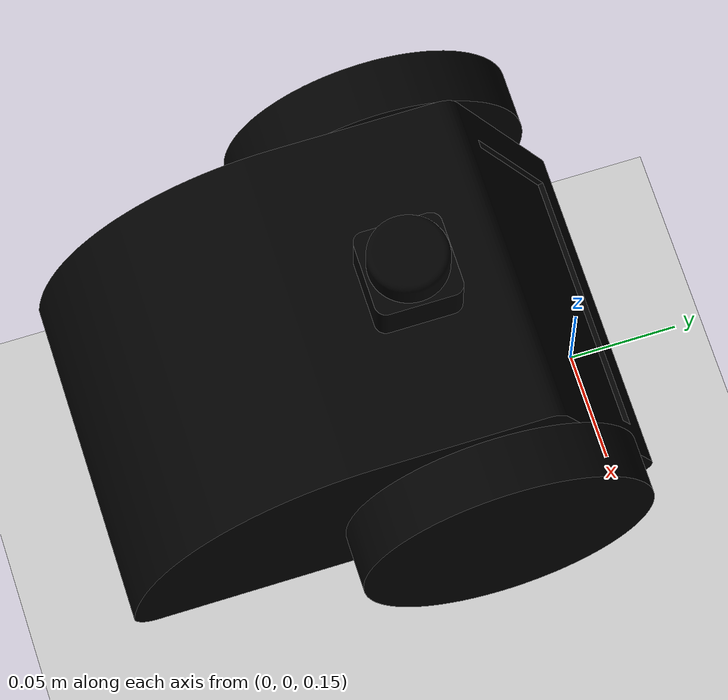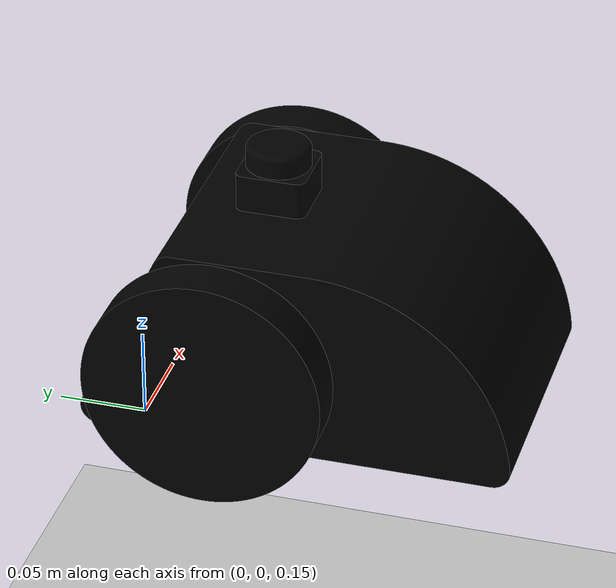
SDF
<?xml version="1.0" ?>

<sdf version='1.9'>
  <world name='empty'>
    <physics name='1ms' type='ignored'>
      <max_step_size>0.001</max_step_size>
      <real_time_factor>1</real_time_factor>
      <real_time_update_rate>1000</real_time_update_rate>
    </physics>
    <plugin name='gz::sim::systems::Physics' filename='ignition-gazebo-physics-system'/>
    <plugin name='gz::sim::systems::UserCommands' filename='ignition-gazebo-user-commands-system'/>
    <plugin name='gz::sim::systems::SceneBroadcaster' filename='ignition-gazebo-scene-broadcaster-system'/>
    <plugin name='gz::sim::systems::Contact' filename='ignition-gazebo-contact-system'/>
    <gravity>0 0 -9.8</gravity>
    <magnetic_field>6e-06 2.3e-05 -4.2e-05</magnetic_field>
    <atmosphere type='adiabatic'/>
    <scene>
      <ambient>0.4 0.4 0.4 1</ambient>
      <background>0.7 0.7 0.7 1</background>
      <shadows>true</shadows>
    </scene>
    <model name='ground_plane'>
      <static>true</static>
      <link name='link'>
        <collision name='collision'>
          <geometry>
            <plane>
              <normal>0 0 1</normal>
              <size>100 100</size>
            </plane>
          </geometry>
          <surface>
            <friction>
              <ode/>
            </friction>
            <bounce/>
            <contact/>
          </surface>
        </collision>
        <visual name='visual'>
          <geometry>
            <plane>
              <normal>0 0 1</normal>
              <size>100 100</size>
            </plane>
          </geometry>
          <material>
            <ambient>0.8 0.8 0.8 1</ambient>
            <diffuse>0.8 0.8 0.8 1</diffuse>
            <specular>0.8 0.8 0.8 1</specular>
          </material>
        </visual>
        <pose>0 0 0 0 -0 0</pose>
        <inertial>
          <pose>0 0 0 0 -0 0</pose>
          <mass>1</mass>
          <inertia>
            <ixx>1</ixx>
            <ixy>0</ixy>
            <ixz>0</ixz>
            <iyy>1</iyy>
            <iyz>0</iyz>
            <izz>1</izz>
          </inertia>
        </inertial>
        <enable_wind>false</enable_wind>
      </link>
      <pose>0 0 0 0 -0 0</pose>
      <self_collide>false</self_collide>
    </model>

    <include>
      <uri>model://home/fionn/sec_bot_ws/src/sec_bot_ros2/urdf/robot_converted.sdf</uri>
      <pose>0 0 0.2 0 0 0</pose>
    </include>

    <light name='sun' type='directional'>
      <pose>0 0 10 0 -0 0</pose>
      <cast_shadows>true</cast_shadows>
      <intensity>1</intensity>
      <direction>-0.5 0.1 -0.9</direction>
      <diffuse>0.8 0.8 0.8 1</diffuse>
      <specular>0.2 0.2 0.2 1</specular>
      <attenuation>
        <range>1000</range>
        <linear>0.01</linear>
        <constant>0.90000000000000002</constant>
        <quadratic>0.001</quadratic>
      </attenuation>
      <spot>
        <inner_angle>0</inner_angle>
        <outer_angle>0</outer_angle>
        <falloff>0</falloff>
      </spot>
    </light>
  </world>
</sdf>

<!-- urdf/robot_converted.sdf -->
<sdf version='1.9'>
  <model name='URDF'>
    <link name='base_link'>
      <inertial>
        <pose>0.04438135250210484 -0.1061778793367964 0.04733381165238545 0 0 0</pose>
        <mass>25.1623688204694</mass>
        <inertia>
          <ixx>0.1098716038830415</ixx>
          <ixy>0.00025559737379302061</ixy>
          <ixz>0.00092271634194572572</ixz>
          <iyy>0.072372669004639165</iyy>
          <iyz>-0.0029964494892606862</iyz>
          <izz>0.132267591521045</izz>
        </inertia>
      </inertial>
      <collision name='base_link_fixed_joint_lump__caster_link_collision'>
        <pose>0 0 0 0 0 0</pose>
        <geometry>
          <mesh>
            <scale>0.001 0.001 0.001</scale>
            <uri>file:/home/fionn/sec_bot_ws/src/sec_bot_ros2/meshes/caster_link_1.stl</uri>
          </mesh>
        </geometry>
      </collision>
      <collision name='base_link_fixed_joint_lump__chassis_link_collision_1'>
        <pose>0 0 0 0 0 0</pose>
        <geometry>
          <mesh>
            <scale>0.001 0.001 0.001</scale>
            <uri>file:/home/fionn/sec_bot_ws/src/sec_bot_ros2/meshes/base_link.stl</uri>
          </mesh>
        </geometry>
      </collision>
      <collision name='base_link_fixed_joint_lump__lidar_link_collision_2'>
        <pose>0 0 0 0 0 0</pose>
        <geometry>
          <mesh>
            <scale>0.001 0.001 0.001</scale>
            <uri>file:/home/fionn/sec_bot_ws/src/sec_bot_ros2/meshes/lidar_link_1.stl</uri>
          </mesh>
        </geometry>
      </collision>
      <visual name='base_link_fixed_joint_lump__caster_link_visual'>
        <pose>0 0 0 0 0 0</pose>
        <geometry>
          <mesh>
            <scale>0.001 0.001 0.001</scale>
            <uri>file:/home/fionn/sec_bot_ws/src/sec_bot_ros2/meshes/caster_link_1.stl</uri>
          </mesh>
        </geometry>
        <material>
          <diffuse>0 0 0 1</diffuse>
          <ambient>0 0 0 1</ambient>
        </material>
      </visual>
      <visual name='base_link_fixed_joint_lump__chassis_link_visual_1'>
        <pose>0 0 0 0 0 0</pose>
        <geometry>
          <mesh>
            <scale>0.001 0.001 0.001</scale>
            <uri>file:/home/fionn/sec_bot_ws/src/sec_bot_ros2/meshes/base_link.stl</uri>
          </mesh>
        </geometry>
        <material>
          <diffuse>0 0 0 1</diffuse>
          <ambient>0 0 0 1</ambient>
        </material>
      </visual>
      <visual name='base_link_fixed_joint_lump__lidar_link_visual_2'>
        <pose>0 0 0 0 0 0</pose>
        <geometry>
          <mesh>
            <scale>0.001 0.001 0.001</scale>
            <uri>file:/home/fionn/sec_bot_ws/src/sec_bot_ros2/meshes/lidar_link_1.stl</uri>
          </mesh>
        </geometry>
        <material>
          <diffuse>0 0 0 1</diffuse>
          <ambient>0 0 0 1</ambient>
        </material>
      </visual>
    </link>
    <joint name='left_wheel_joint' type='revolute'>
      <pose relative_to='base_link'>-0.075 -0.065937 0.03563 0 0 0</pose>
      <parent>base_link</parent>
      <child>left_wheel_link</child>
      <axis>
        <xyz>-1 0 0</xyz>
        <limit>
          <lower>-10000000000000000</lower>
          <upper>10000000000000000</upper>
        </limit>
        <dynamics>
          <spring_reference>0</spring_reference>
          <spring_stiffness>0</spring_stiffness>
        </dynamics>
      </axis>
    </joint>
    <link name='left_wheel_link'>
      <pose relative_to='left_wheel_joint'>0 0 0 0 0 0</pose>
      <inertial>
        <pose>0 0 0 0 0 0</pose>
        <mass>2.6048711836780609</mass>
        <inertia>
          <ixx>0.0055030000000000001</ixx>
          <ixy>0</ixy>
          <ixz>0</ixz>
          <iyy>0.0028869999999999998</iyy>
          <iyz>0</iyz>
          <izz>0.0028869999999999998</izz>
        </inertia>
      </inertial>
      <collision name='left_wheel_link_collision'>
        <pose>0.075 0.065937 -0.03563 0 0 0</pose>
        <geometry>
          <mesh>
            <scale>0.001 0.001 0.001</scale>
            <uri>file:/home/fionn/sec_bot_ws/src/sec_bot_ros2/meshes/left_wheel_link_1.stl</uri>
          </mesh>
        </geometry>
      </collision>
      <visual name='left_wheel_link_visual'>
        <pose>0.075 0.065937 -0.03563 0 0 0</pose>
        <geometry>
          <mesh>
            <scale>0.001 0.001 0.001</scale>
            <uri>file:/home/fionn/sec_bot_ws/src/sec_bot_ros2/meshes/left_wheel_link_1.stl</uri>
          </mesh>
        </geometry>
        <material>
          <diffuse>0 0 0 1</diffuse>
          <ambient>0 0 0 1</ambient>
        </material>
      </visual>
    </link>
    <joint name='right_wheel_joint' type='revolute'>
      <pose relative_to='base_link'>0.075 -0.065937 0.03563 0 0 0</pose>
      <parent>base_link</parent>
      <child>right_wheel_link</child>
      <axis>
        <xyz>-1 0 0</xyz>
        <limit>
          <lower>-10000000000000000</lower>
          <upper>10000000000000000</upper>
        </limit>
        <dynamics>
          <spring_reference>0</spring_reference>
          <spring_stiffness>0</spring_stiffness>
        </dynamics>
      </axis>
    </joint>
    <link name='right_wheel_link'>
      <pose relative_to='right_wheel_joint'>0 0 0 0 0 0</pose>
      <inertial>
        <pose>-0.03054194831388796 -0.001957133202892432 -0.007340509604943389 0 0 0</pose>
        <mass>2.6048711836780609</mass>
        <inertia>
          <ixx>0.0055030000000000001</ixx>
          <ixy>0</ixy>
          <ixz>0</ixz>
          <iyy>0.0028869999999999998</iyy>
          <iyz>0</iyz>
          <izz>0.0028869999999999998</izz>
        </inertia>
      </inertial>
      <collision name='right_wheel_link_collision'>
        <pose>-0.075 0.065937 -0.03563 0 0 0</pose>
        <geometry>
          <mesh>
            <scale>0.001 0.001 0.001</scale>
            <uri>file:/home/fionn/sec_bot_ws/src/sec_bot_ros2/meshes/right_wheel_link_1.stl</uri>
          </mesh>
        </geometry>
      </collision>
      <visual name='right_wheel_link_visual'>
        <pose>-0.075 0.065937 -0.03563 0 0 0</pose>
        <geometry>
          <mesh>
            <scale>0.001 0.001 0.001</scale>
            <uri>file:/home/fionn/sec_bot_ws/src/sec_bot_ros2/meshes/right_wheel_link_1.stl</uri>
          </mesh>
        </geometry>
        <material>
          <diffuse>0 0 0 1</diffuse>
          <ambient>0 0 0 1</ambient>
        </material>
      </visual>
    </link>
    <frame name='caster_joint' attached_to='base_link'>
      <pose>0 -0.196024 -0.01 0 -0 0</pose>
    </frame>
    <frame name='caster_link' attached_to='caster_joint'/>
    <frame name='chassis_joint' attached_to='base_link'>
      <pose>0 0 0 0 -0 0</pose>
    </frame>
    <frame name='chassis_link' attached_to='chassis_joint'/>
    <frame name='lidar_joint' attached_to='base_link'>
      <pose>0 -0.079076 0.100631 0 -0 0</pose>
    </frame>
    <frame name='lidar_link' attached_to='lidar_joint'/>
  </model>
</sdf>
